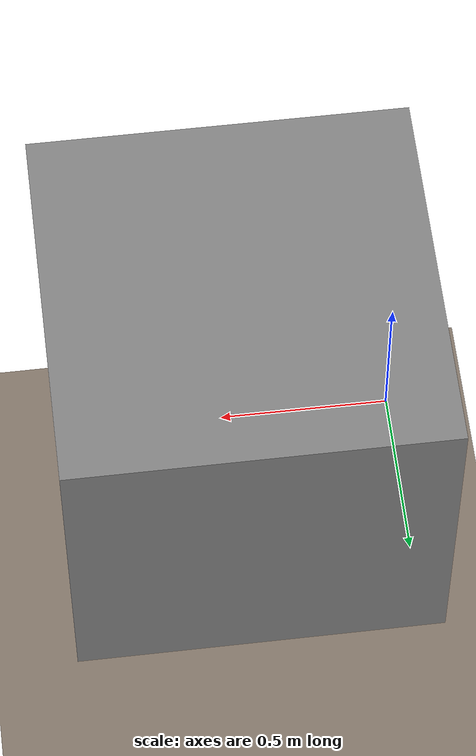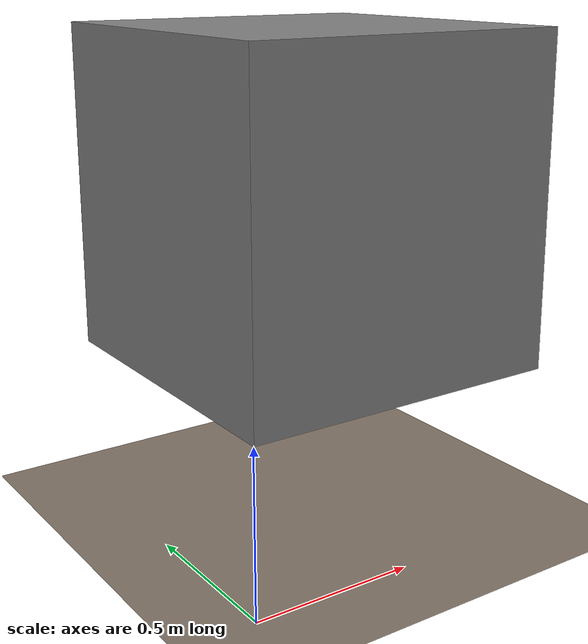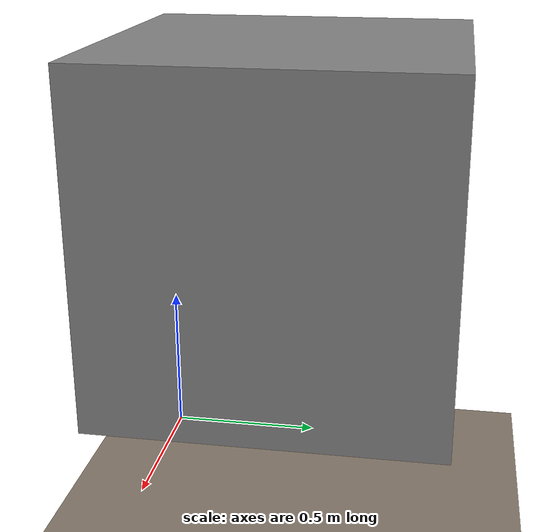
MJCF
<!-- Test model for visual debugging of orthographic cameras. -->

<mujoco>
  <visual>
    <!-- free camera is orthorgaphic with a 5m vertical field-of-view -->
    <global orthographic="true" fovy="5"/>
    <scale camera="0.5"/>
  </visual>

  <asset>
    <texture name="grid" type="2d" builtin="checker" width="512" height="512" rgb1=".8 .6 .4" rgb2=".2 .3 .4"/>
    <material name="grid" texture="grid" texrepeat="10 10" texuniform="false" reflectance=".2"/>
  </asset>

  <default>
    <camera projection="orthographic"/>
  </default>

  <worldbody>
    <light pos="0 0 3"/>
    <geom type="plane" size="10 10 .01" material="grid"/>

    <body pos=".5 .5 .5">
      <freejoint/>
      <geom type="box" size=".5 .5 .5" pos="0 0 .5"/>
    </body>

    <!-- box should pefectly fit within field-of-view -->
    <camera name="fovy = 1" pos=".5 .5 2" projection="orthographic" fovy="1" resolution="640 480"/>

    <!-- 2 floor squares should pefectly fit within field-of-view -->
    <camera name="fovy = 2" pos="0 0 3" fovy="2"/>   <!-- inherits projection="orthographic" from defaults -->
  </worldbody>
</mujoco>
